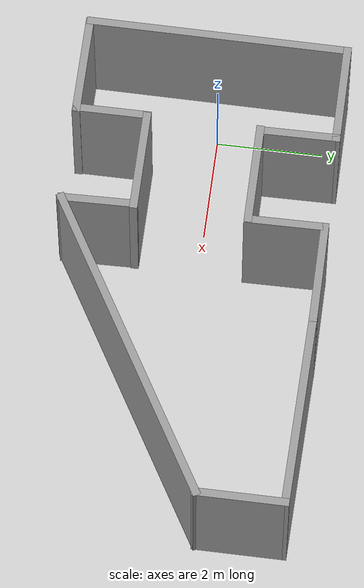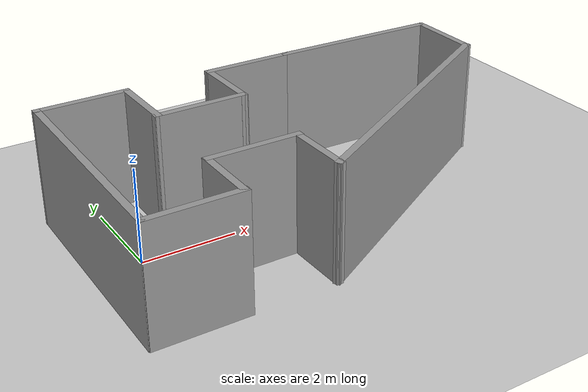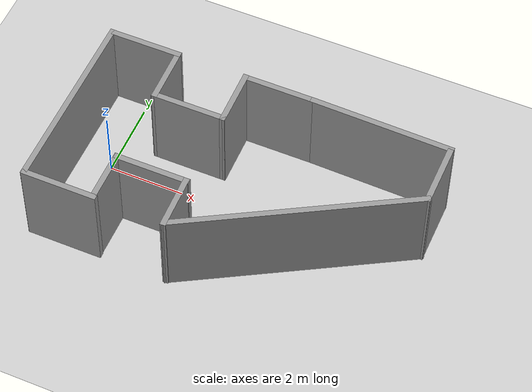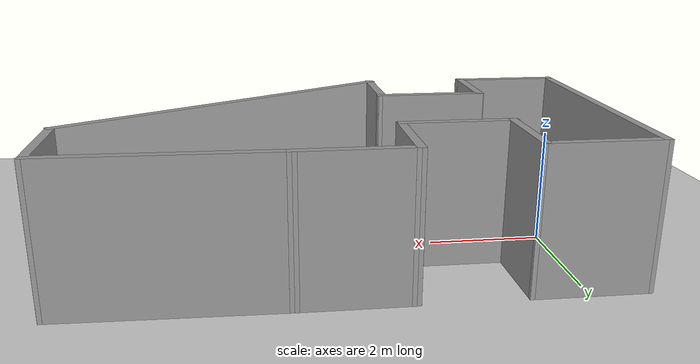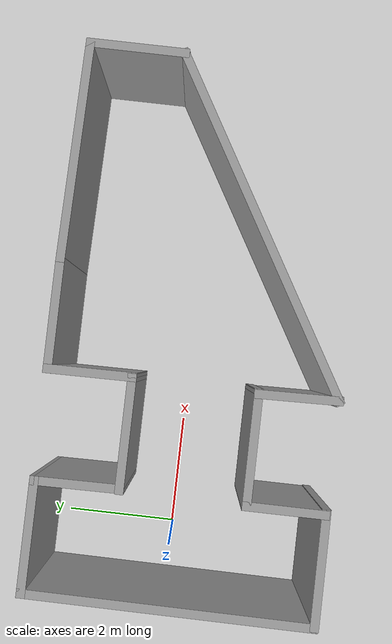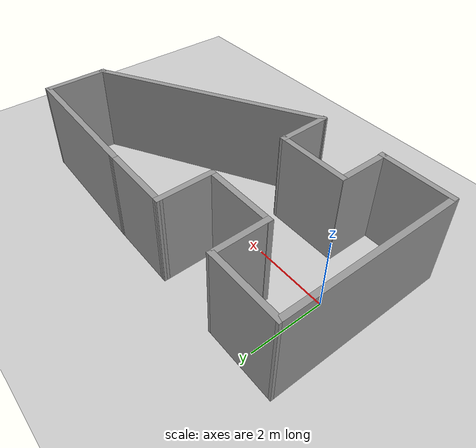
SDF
<sdf version="1.7">
 <world name="default">
  <light name="sun" type="directional">
   <pose>0 0 10 0 -0 0</pose>
   <diffuse>0.8 0.8 0.8 1</diffuse>
   <specular>0.2 0.2 0.2 1</specular>
   <attenuation>
    <range>1000</range>
    <constant>0.9</constant>
    <linear>0.01</linear>
    <quadratic>0.001</quadratic>
   </attenuation>
   <direction>-0.5 0.1 -0.9</direction>
   <spot><inner_angle>0</inner_angle><outer_angle>0</outer_angle><falloff>0</falloff></spot>
  </light>
  <model name="ground_plane">
   <static>1</static>
   <link name="link">
    <collision name="collision">
     <geometry><plane><normal>0 0 1</normal><size>100 100</size></plane></geometry>
     <surface>
      <contact><collide_bitmask>65535</collide_bitmask></contact>
      <friction><ode><mu>100</mu><mu2>50</mu2></ode></friction>
     </surface>
    </collision>
    <visual name="visual">
     <cast_shadows>0</cast_shadows>
     <geometry><plane><normal>0 0 1</normal><size>100 100</size></plane></geometry>
     <material>
      <script><uri>file://media/materials/scripts/gazebo.material</uri><name>Gazebo/Grey</name></script>
     </material>
    </visual>
   </link>
  </model>
  <gravity>0 0 -9.8</gravity>
  <magnetic_field>6e-06 2.3e-05 -4.2e-05</magnetic_field>
  <atmosphere type="adiabatic"/>
  <physics type="ode">
   <max_step_size>0.001</max_step_size>
   <real_time_factor>1</real_time_factor>
   <real_time_update_rate>1000</real_time_update_rate>
  </physics>
  <scene><ambient>0.4 0.4 0.4 1</ambient><background>0.7 0.7 0.7 1</background><shadows>1</shadows></scene>
  <spherical_coordinates>
   <surface_model>EARTH_WGS84</surface_model>
   <latitude_deg>0</latitude_deg>
   <longitude_deg>0</longitude_deg>
   <elevation>0</elevation>
   <heading_deg>0</heading_deg>
  </spherical_coordinates>
  <model name="room1">
   <pose>3.6557 -0.133579 0 0 -0 0</pose>
   <link name="Wall_24">
    <collision name="Wall_24_Collision">
     <geometry><box><size>2 0.15 2.5</size></box></geometry>
     <pose>0 0 1.25 0 -0 0</pose>
    </collision>
    <visual name="Wall_24_Visual">
     <pose>0 0 1.25 0 -0 0</pose>
     <geometry><box><size>2 0.15 2.5</size></box></geometry>
     <material>
      <script><uri>file://media/materials/scripts/gazebo.material</uri><name>Gazebo/Grey</name></script>
      <ambient>1 1 1 1</ambient>
     </material>
     <meta><layer>0</layer></meta>
    </visual>
    <pose>-3.67291 2.43796 0 0 -0 0</pose>
   </link>
   <link name="Wall_25">
    <collision name="Wall_25_Collision">
     <geometry><box><size>1.55903 0.15 2.5</size></box></geometry>
     <pose>0 0 1.25 0 -0 0</pose>
    </collision>
    <visual name="Wall_25_Visual">
     <pose>0 0 1.25 0 -0 0</pose>
     <geometry><box><size>1.55903 0.15 2.5</size></box></geometry>
     <material>
      <script><uri>file://media/materials/scripts/gazebo.material</uri><name>Gazebo/Grey</name></script>
      <ambient>1 1 1 1</ambient>
     </material>
     <meta><layer>0</layer></meta>
    </visual>
    <pose>-2.74031 1.73349 0 0 -0 -1.56</pose>
   </link>
   <link name="Wall_26">
    <collision name="Wall_26_Collision">
     <geometry><box><size>2 0.15 2.5</size></box></geometry>
     <pose>0 0 1.25 0 -0 0</pose>
    </collision>
    <visual name="Wall_26_Visual">
     <pose>0 0 1.25 0 -0 0</pose>
     <geometry><box><size>2 0.15 2.5</size></box></geometry>
     <material>
      <script><uri>file://media/materials/scripts/gazebo.material</uri><name>Gazebo/Grey</name></script>
      <ambient>1 1 1 1</ambient>
     </material>
     <meta><layer>0</layer></meta>
    </visual>
    <pose>-1.82291 1.02902 0 0 -0 0</pose>
   </link>
   <link name="Wall_27">
    <collision name="Wall_27_Collision">
     <geometry><box><size>1.55903 0.15 2.5</size></box></geometry>
     <pose>0 0 1.25 0 -0 0</pose>
    </collision>
    <visual name="Wall_27_Visual">
     <pose>0 0 1.25 0 -0 0</pose>
     <geometry><box><size>1.55903 0.15 2.5</size></box></geometry>
     <material>
      <script><uri>file://media/materials/scripts/gazebo.material</uri><name>Gazebo/Grey</name></script>
      <ambient>1 1 1 1</ambient>
     </material>
     <meta><layer>0</layer></meta>
    </visual>
    <pose>-0.890308 1.73349 0 0 -0 1.58159</pose>
   </link>
   <link name="Wall_28">
    <collision name="Wall_28_Collision">
     <geometry><box><size>2 0.15 2.5</size></box></geometry>
     <pose>0 0 1.25 0 -0 0</pose>
    </collision>
    <visual name="Wall_28_Visual">
     <pose>0 0 1.25 0 -0 0</pose>
     <geometry><box><size>2 0.15 2.5</size></box></geometry>
     <material>
      <script><uri>file://media/materials/scripts/gazebo.material</uri><name>Gazebo/Grey</name></script>
      <ambient>1 1 1 1</ambient>
     </material>
     <meta><layer>0</layer></meta>
    </visual>
    <pose>0.027088 2.43796 0 0 -0 0</pose>
   </link>
   <link name="Wall_31">
    <collision name="Wall_31_Collision">
     <geometry><box><size>1.48325 0.15 2.5</size></box></geometry>
     <pose>0 0 1.25 0 -0 0</pose>
    </collision>
    <visual name="Wall_31_Visual">
     <pose>0 0 1.25 0 -0 0</pose>
     <geometry><box><size>1.48325 0.15 2.5</size></box></geometry>
     <material>
      <script><uri>file://media/materials/scripts/gazebo.material</uri><name>Gazebo/Grey</name></script>
      <ambient>1 1 1 1</ambient>
     </material>
     <meta><layer>0</layer></meta>
    </visual>
    <pose>-0.913121 -1.74558 0 0 -0 1.59361</pose>
   </link>
   <link name="Wall_32">
    <collision name="Wall_32_Collision">
     <geometry><box><size>2 0.15 2.5</size></box></geometry>
     <pose>0 0 1.25 0 -0 0</pose>
    </collision>
    <visual name="Wall_32_Visual">
     <pose>0 0 1.25 0 -0 0</pose>
     <geometry><box><size>2 0.15 2.5</size></box></geometry>
     <material>
      <script><uri>file://media/materials/scripts/gazebo.material</uri><name>Gazebo/Grey</name></script>
      <ambient>1 1 1 1</ambient>
     </material>
     <meta><layer>0</layer></meta>
    </visual>
    <pose>-1.83812 -1.07913 0 0 -0 3.14159</pose>
   </link>
   <link name="Wall_33">
    <collision name="Wall_33_Collision">
     <geometry><box><size>1.45249 0.15 2.5</size></box></geometry>
     <pose>0 0 1.25 0 -0 0</pose>
    </collision>
    <visual name="Wall_33_Visual">
     <pose>0 0 1.25 0 -0 0</pose>
     <geometry><box><size>1.45249 0.15 2.5</size></box></geometry>
     <material>
      <script><uri>file://media/materials/scripts/gazebo.material</uri><name>Gazebo/Grey</name></script>
      <ambient>1 1 1 1</ambient>
     </material>
     <meta><layer>0</layer></meta>
    </visual>
    <pose>-2.77833 -1.73038 0 0 -0 -1.5708</pose>
   </link>
   <link name="Wall_34">
    <collision name="Wall_34_Collision">
     <geometry><box><size>2 0.15 2.5</size></box></geometry>
     <pose>0 0 1.25 0 -0 0</pose>
    </collision>
    <visual name="Wall_34_Visual">
     <pose>0 0 1.25 0 -0 0</pose>
     <geometry><box><size>2 0.15 2.5</size></box></geometry>
     <material>
      <script><uri>file://media/materials/scripts/gazebo.material</uri><name>Gazebo/Grey</name></script>
      <ambient>1 1 1 1</ambient>
     </material>
     <meta><layer>0</layer></meta>
    </visual>
    <pose>-3.68812 -2.39683 0 0 -0 3.14159</pose>
   </link>
   <link name="Wall_35">
    <collision name="Wall_35_Collision">
     <geometry><box><size>4.96968 0.15 2.5</size></box></geometry>
     <pose>0 0 1.25 0 -0 0</pose>
    </collision>
    <visual name="Wall_35_Visual">
     <pose>0 0 1.25 0 -0 0</pose>
     <geometry><box><size>4.96968 0.15 2.5</size></box></geometry>
     <material>
      <script><uri>file://media/materials/scripts/gazebo.material</uri><name>Gazebo/Grey</name></script>
      <ambient>1 1 1 1</ambient>
     </material>
     <meta><layer>0</layer></meta>
    </visual>
    <pose>-4.61312 0.028172 0 0 -0 1.56448</pose>
   </link>
   <link name="Wall_44">
    <collision name="Wall_44_Collision">
     <geometry><box><size>6.5 0.15 2.5</size></box></geometry>
     <pose>0 0 1.25 0 -0 0</pose>
    </collision>
    <visual name="Wall_44_Visual">
     <pose>0 0 1.25 0 -0 0</pose>
     <geometry><box><size>6.5 0.15 2.5</size></box></geometry>
     <material>
      <script><uri>file://media/materials/scripts/gazebo.material</uri><name>Gazebo/Grey</name></script>
      <ambient>1 1 1 1</ambient>
     </material>
     <meta><layer>0</layer></meta>
    </visual>
    <pose>1.85172 -0.824537 0 0 -0 0.523599</pose>
   </link>
   <link name="Wall_45">
    <collision name="Wall_45_Collision">
     <geometry><box><size>1.75 0.15 2.5</size></box></geometry>
     <pose>0 0 1.25 0 -0 0</pose>
    </collision>
    <visual name="Wall_45_Visual">
     <pose>0 0 1.25 0 -0 0</pose>
     <geometry><box><size>1.75 0.15 2.5</size></box></geometry>
     <material>
      <script><uri>file://media/materials/scripts/gazebo.material</uri><name>Gazebo/Grey</name></script>
      <ambient>1 1 1 1</ambient>
     </material>
     <meta><layer>0</layer></meta>
    </visual>
    <pose>4.60135 1.56296 0 0 -0 1.5708</pose>
   </link>
   <link name="Wall_46">
    <collision name="Wall_46_Collision">
     <geometry><box><size>3.80003 0.15 2.5</size></box></geometry>
     <pose>0 0 1.25 0 -0 0</pose>
    </collision>
    <visual name="Wall_46_Visual">
     <pose>0 0 1.25 0 -0 0</pose>
     <geometry><box><size>3.80003 0.15 2.5</size></box></geometry>
     <material>
      <script><uri>file://media/materials/scripts/gazebo.material</uri><name>Gazebo/Grey</name></script>
      <ambient>1 1 1 1</ambient>
     </material>
     <meta><layer>0</layer></meta>
    </visual>
    <pose>2.77672 2.40046 0 0 -0 3.12104</pose>
   </link>
   <static>1</static>
  </model>
 </world>
</sdf>
